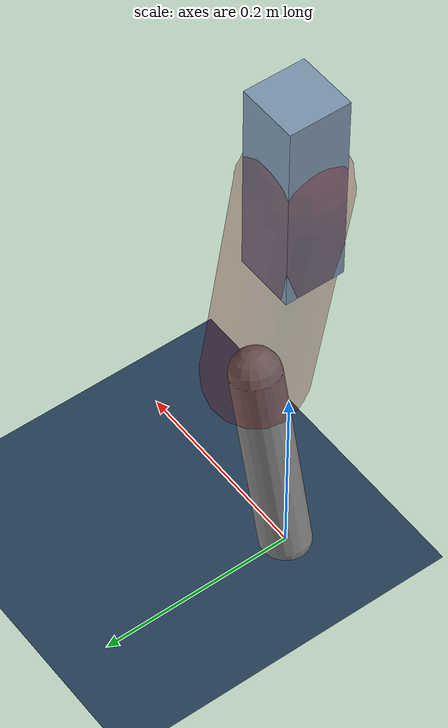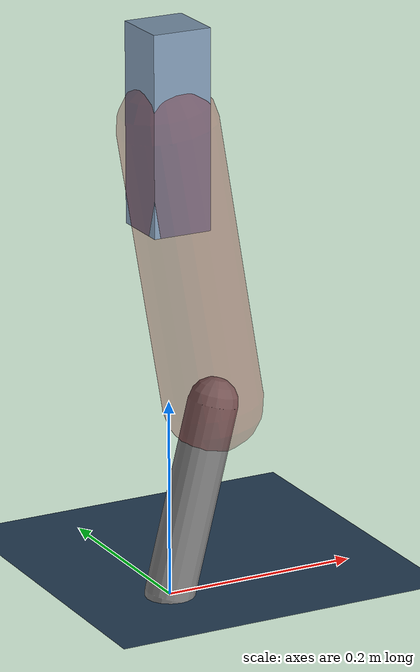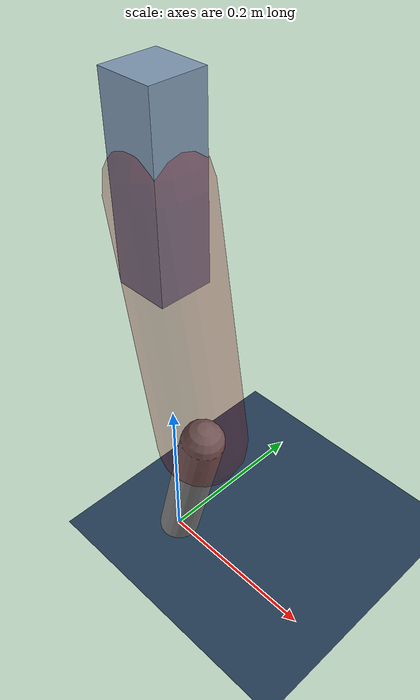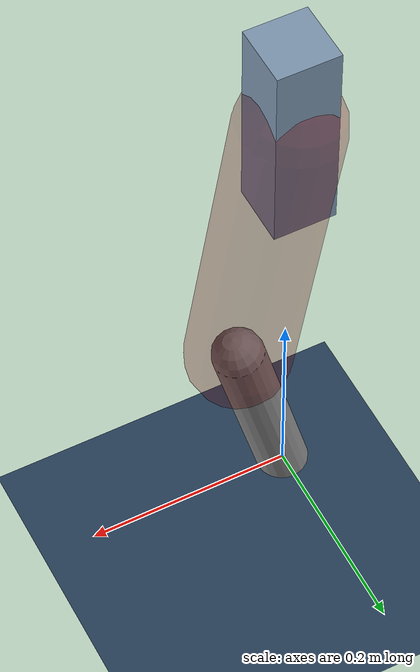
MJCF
<mujoco model="Hopper2D">
	<compiler inertiafromgeom="true" angle="radian" />
	<option timestep="0.001" integrator="implicit" cone="elliptic" solver="Newton" tolerance="1e-10" />

	<default>
		<geom contype="1" conaffinity="1" condim="3" friction="2 0.005 0.0001" solref="0.005 1" />
		<joint limited="true" damping="0.1" />
	</default>

	<asset>
		<texture name="skybox" type="skybox" builtin="gradient" rgb1=".4 .6 .8" rgb2="0 0 0" width="800" height="800" />
		<texture name="grid" type="2d" builtin="checker" rgb1=".1 .2 .3" rgb2=".2 .3 .4" width="300" height="300" mark="edge" markrgb=".2 .3 .4" />
		<material name="ground" texture="grid" texrepeat="1 1" texuniform="true" reflectance="0.1" />
		<material name="leg" rgba="0.5 0.6 0.7 1" />
	</asset>

	<worldbody>

		<geom name="floor" type="plane" size="5 5 0.25" material="ground" />

		<light directional="false" diffuse="0.8 0.8 0.8" specular="0.3 0.3 0.3" pos="0 0 2" dir="0 0 -1" />
		<light mode="targetbodycom" target="base" directional="false" diffuse="0.8 0.8 0.8" specular="0.3 0.3 0.3" pos="0 0 2" dir="0 0 -1" />

		<camera name="fixed" pos="0 -2 1" xyaxes="1 0 0 0 0 1" />
		<camera name="tracking" mode="trackcom" pos="0 -3 1" />

		<body name="root" pos="0 0 0.47767808363157294">
			<joint name="slide_x" type="slide" axis="1 0 0" range="-100 100" />
			<joint name="slide_z" type="slide" axis="0 0 1" range="0 10" />

			<body name="base" pos="0 0 0">
				<geom name="torso" type="box" size="0.03 0.03 0.1" mass="2.349" material="leg" />

				<body name="link1" pos="0 0 0" euler="0 1.4036695760248807 0">
					<joint type="hinge" axis="0 -1 0" pos="0 0 0" name="hinge1" limited="true" range="-3.14 3.14" stiffness="0" damping="0.1" />
					<geom name="thigh" type="capsule" fromto="0 0 0 0.28979955898690696 0 0" size="0.05" rgba="0.5 0 0 0.3" mass="0.9612588092646488" />

					<body name="link2" pos="0.28979955898690696 0 0" euler="0 0.4132282135308019 0">
						<joint type="hinge" axis="0 -1 0" pos="0 0 0" name="hinge2" limited="true" range="-3.14 3.14" stiffness="0" damping="0.1" />
						<geom name="shank" type="capsule" fromto="0 0 0 0.19787852464466596 0 0" size="0.025" mass="0.39910281971573275" />

					</body>
				</body>
			</body>
		</body>
	</worldbody>

	<actuator>
		<motor name="torque1" joint="hinge1" ctrlrange="-73.52993757551828 73.52993757551828" ctrllimited="true" gear="1" />
		<motor name="torque2" joint="hinge2" ctrlrange="-78.34648739650784 78.34648739650784" ctrllimited="true" gear="1" />
	</actuator>
</mujoco>
